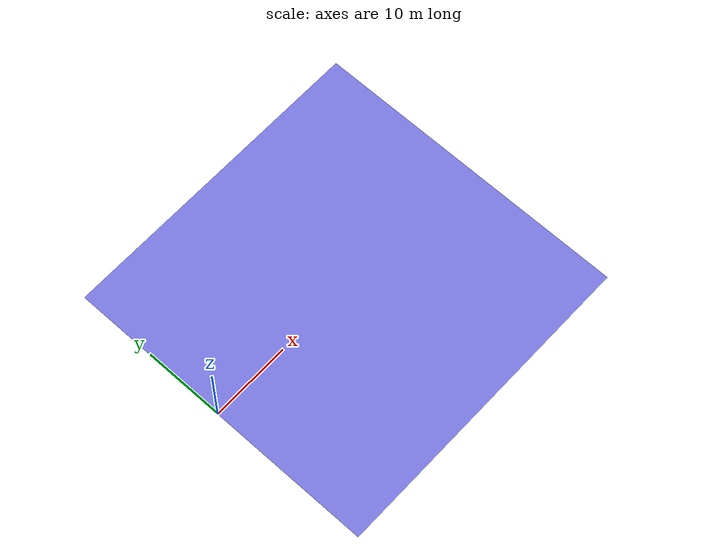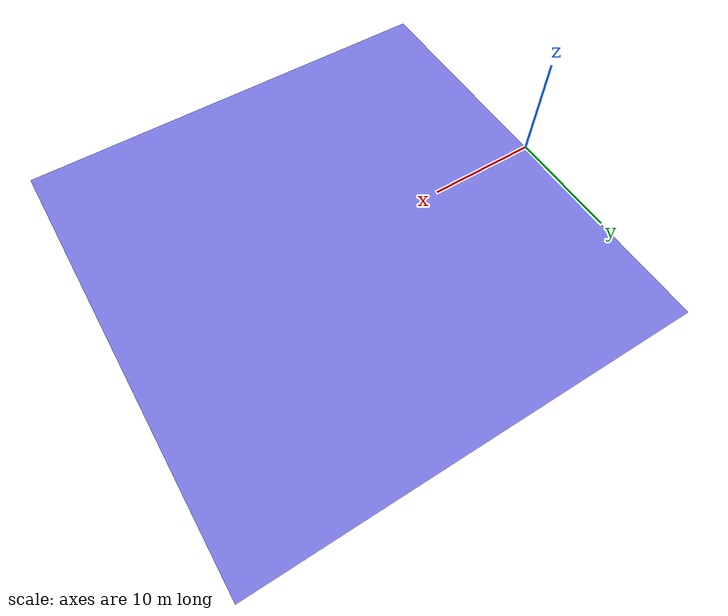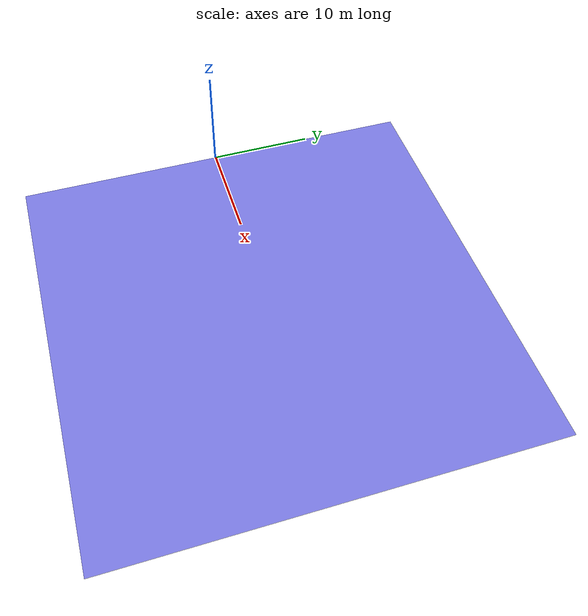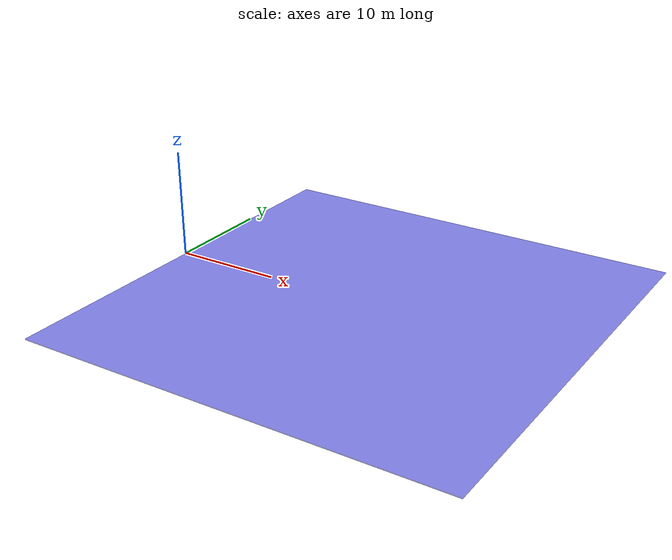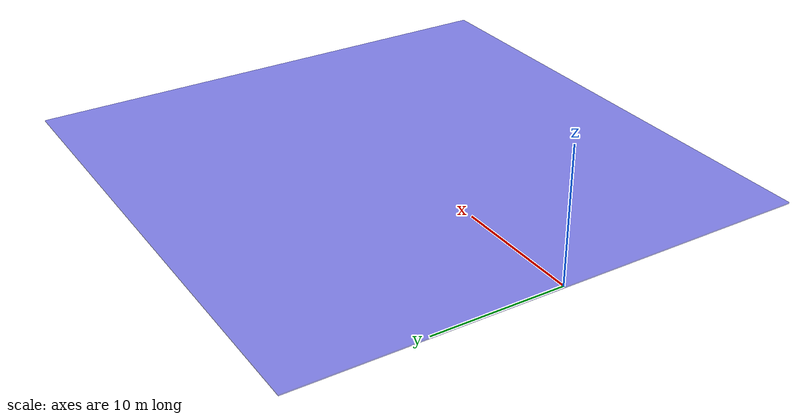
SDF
<?xml version="1.0" ?>
<sdf version="1.6">
  <world name="snow_water_world">
    <!-- Sunlight -->
    <include>
      <uri>model://sun</uri>
    </include>

    <!-- Snow Ground Plane -->
    <model name="snow_plane">
      <static>true</static>
      <link name="link">
        <collision name="collision">
          <geometry><plane><normal>0 0 1</normal><size>100 100</size></plane></geometry>
        </collision>
        <visual name="visual">
          <geometry><plane><normal>0 0 1</normal><size>100 100</size></plane></geometry>
          <material><ambient>0.9 0.9 1 1</ambient><diffuse>0.9 0.9 1 1</diffuse></material>
        </visual>
      </link>
    </model>

    <!-- Water Body (Simulated as a slightly lower blue plane) -->
    <model name="water_body">
      <static>true</static>
      <pose>20 0 -0.1 0 0 0</pose>
      <link name="link">
        <visual name="visual">
          <geometry><box><size>40 40 0.1</size></box></geometry>
          <material><ambient>0 0 0.5 0.5</ambient><diffuse>0 0 0.8 0.5</diffuse></material>
        </visual>
      </link>
    </model>

    <!-- Physics settings for snow/water resistance -->
    <physics type="ode">
      <max_step_size>0.001</max_step_size>
      <real_time_factor>1</real_time_factor>
      <real_time_update_rate>1000</real_time_update_rate>
    </physics>
  </world>
</sdf>
